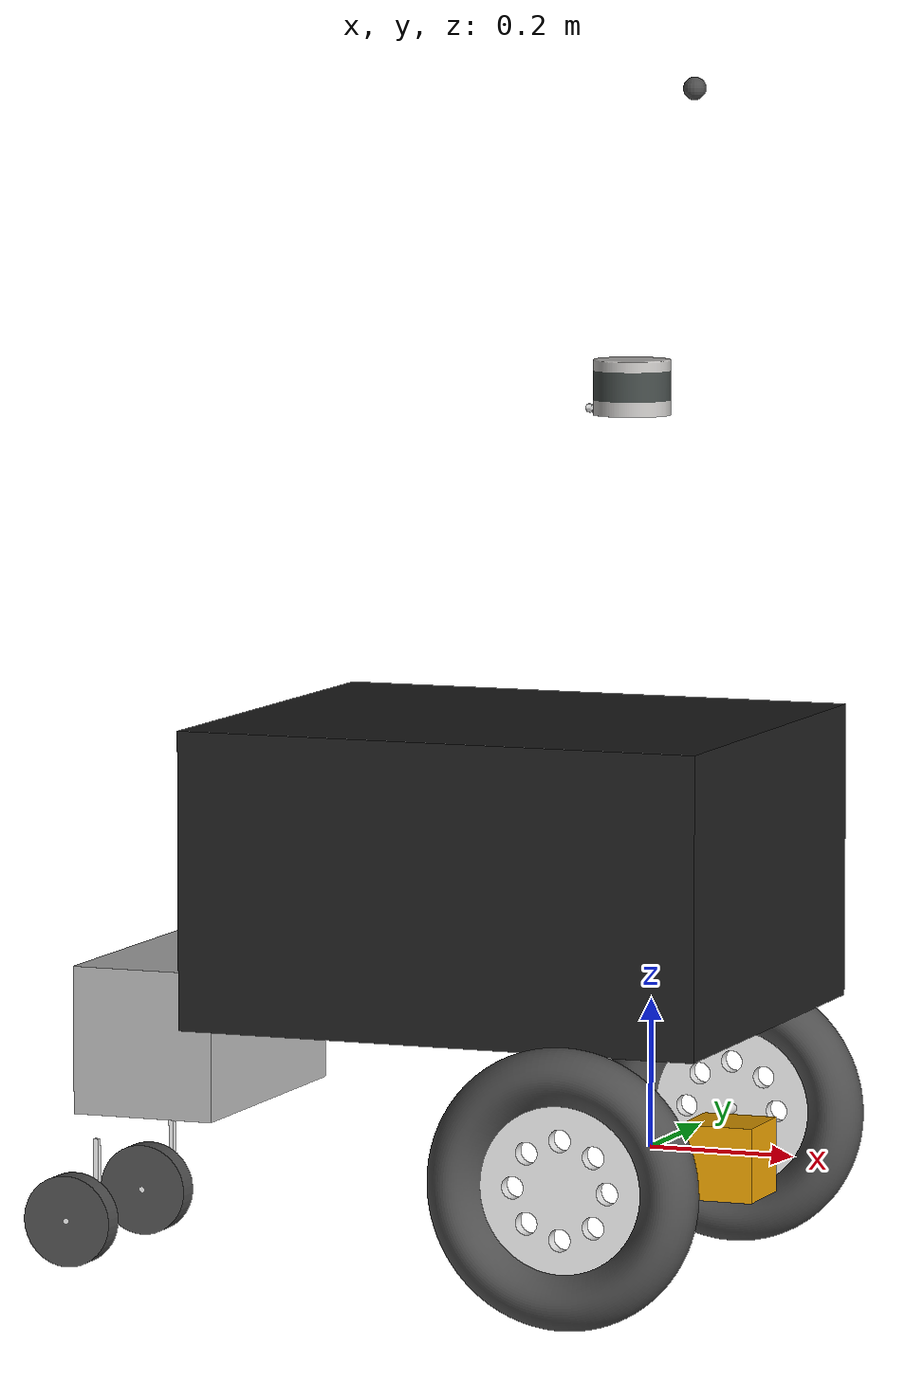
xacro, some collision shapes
<?xml version="1.0"?>
<!-- Revolute-Revolute Manipulator -->
<robot name="igvc_robot" xmlns:xacro="http://www.ros.org/wiki/xacro">
  <!-- Constants for robot dimensions -->
  <xacro:property name="PI" value="3.1415926535897931"/>
  <xacro:macro name="box_inertia" params="m x y z">
    <inertia ixx="${m*(y*y+z*z)/12.0}" ixy = "0.0" ixz = "0.0"
             iyy="${m*(z*z+x*x)/12.0}" iyz = "0.0"
             izz="${m*(x*x+y*y)/12.0}" />
  </xacro:macro>

  <!-- Import gazebo reference -->
  <xacro:include filename="$(find tsukuba2022)/urdf/igvc_robot.gazebo"/>

  <!-- Import 2D LiDAR model -->
  <xacro:include filename="$(find tsukuba2022)/urdf/sensors/hokuyo.urdf.xacro"/>
  <xacro:sensor_hokuyo name="hokuyo" parent="base_link" min_angle="-1.22" max_angle="1.22" samples="720">
    <origin xyz="0.109 0 -0.0075" rpy="0 0 0"/>
  </xacro:sensor_hokuyo>

  <!-- Import 3D LiDAR model -->
  <xacro:include filename="$(find tsukuba2022)/urdf/sensors/velodyne.urdf.xacro"/>
  <xacro:sensor_velodyne name="velodyne" parent="base_link" min_angle="-2.35619" max_angle="2.35619" samples="720">
    <origin xyz="-0.0355 0 1.013" rpy="0 0 0"/>
  </xacro:sensor_velodyne>

  <!-- Import fisheye camera model -->
  <xacro:include filename="$(find tsukuba2022)/urdf/sensors/camera.urdf.xacro"/>
  <xacro:sensor_camera name="camera" parent="base_link">
    <origin xyz="0.0565 0 1.406" rpy="0 0 0"/>
  </xacro:sensor_camera>

  <!-- Import imu model -->
  <xacro:include filename="$(find tsukuba2022)/urdf/sensors/imu.urdf.xacro"/>
  <xacro:sensor_imu name="imu" parent="base_link" size="0.05 0.05 0.05">
    <origin xyz="-0.409 0 0.177" rpy="0 0 0"/>
  </xacro:sensor_imu>

  <!-- Base Link -->
  <link name="base_link">
    <collision>
      <origin xyz="-0.1915 0.0 0.369" rpy="0 0 0"/>
      <geometry>
	     <box size=".719 .610 .398"/>
      </geometry>
    </collision>

    <visual>
      <origin xyz="-0.1915 0.0 0.369" rpy="0 0 0"/>
      <geometry>
	    <mesh filename="package://tsukuba2022/meshes/chassis.dae"/>
      </geometry>
    </visual>

    <inertial>
       <mass value="42.4" />
       <origin xyz="-0.187 0.0 0.13" rpy="0 0 0"/>
       <xacro:box_inertia m="45.7" x="0.824" y="0.556" z="1.00" />

    </inertial>

  </link>

  <!-- Back wheels -->
  <link name="left_caster_link">
  	 <collision>
  	   <origin xyz="-0.788 0.127 -0.13" rpy="0 ${PI/2} ${PI/2}"/>
      <geometry>
        <sphere radius="0.0625"/>
      </geometry>
  	 </collision>
  	 <visual>
  	   <origin xyz="-0.788 0.127 -0.13" rpy="0 0 0"/>
      <geometry>
        <mesh filename="package://tsukuba2022/meshes/left_back_wheel.dae"/>
      </geometry>
  	 </visual>
  </link>

  <joint name="left_caster_joint" type ="fixed">
    <origin xyz="0 0 0" rpy="0 0 0"/>
    <child link="left_caster_link"/>
    <parent link="base_link"/>
  </joint>

  <link name="right_caster_link">
  	 <collision>
  	   <origin xyz="-0.788 -0.127 -0.13" rpy="0 ${PI/2} ${PI/2}"/>
      <geometry>
        <sphere radius="0.0625"/>
      </geometry>
  	 </collision>
  	 <visual>
  	   <origin xyz="-0.788 -0.127 -0.13" rpy="0 0 0"/>
      <geometry>
        <mesh filename="package://tsukuba2022/meshes/left_back_wheel.dae"/>
      </geometry>
  	 </visual>
  </link>

  <joint name="right_caster_joint" type ="fixed">
    <origin xyz="0 0 0" rpy="0 0 0"/>
    <child link="right_caster_link"/>
    <parent link="base_link"/>
  </joint>

  <!-- Payload -->
  <link name="payload_link">
    <collision>
      <origin xyz="0 0 0" rpy="0 0 0"/>
      <geometry>
	     <box size="0.2 0.4 0.2"/>
      </geometry>
    </collision>
    <visual>
      <origin xyz="0 0 0" rpy="0 0 0"/>
      <geometry>
	     <box size="0.2 0.4 0.2"/>
      </geometry>
    </visual>
    <inertial>
       <mass value="9.07" />
       <origin xyz="0 0 0" rpy="0 0 0"/>
       <xacro:box_inertia m="20" x="0.2" y="0.4" z="0.2" />
    </inertial>
  </link>
  <joint name="payload_joint" type="fixed">
    <origin xyz="-0.6500 0.0 0.1300" rpy="0 0 0"/>
    <child link="payload_link"/>
    <parent link="base_link"/>
  </joint>

  <!-- Front wheels -->
  <link name="left_wheel">
    <collision name="collision">
      <origin xyz="0 0.0 0" rpy="0 ${PI/2} ${PI/2}"/>
      <geometry>
         <cylinder  length="0.092" radius="0.192"/>
      </geometry>
    </collision>
    <visual name="visual">
      <origin xyz="0 0.0 0" rpy="0 0 0"/>
      <geometry>
        <mesh filename="package://tsukuba2022/meshes/left_wheel.dae"/>
      </geometry>
    </visual>
    <inertial>
      <mass value="2.9" />
      <origin xyz="0 0.0 0"/>
      <inertia ixx="0.0267706" ixy="0" ixz="0" iyy="0.0496263" iyz="0" izz="0.0267706" />
    </inertial>
  </link>

  <joint type="revolute" name="left_wheel_hinge">
    <origin xyz="0 0.335 0" rpy="0 0 0"/>
    <child link="left_wheel">left_wheel</child>
    <parent link="base_link">base_link</parent>
    <axis xyz="0 1 0"/>
    <limit effort="100" velocity="100.0"  lower="-5000" upper="5000" />
  </joint>

  <link name="right_wheel">
    <collision name="collision">
      <origin xyz="0 0.0 0" rpy="0 ${PI/2} ${PI/2}"/>
      <geometry>
         <cylinder  length="0.092" radius="0.192"/>
      </geometry>
    </collision>
    <visual name="visual">
      <origin xyz="0 0.0 0" rpy="0 0 0"/>
      <geometry>
        <mesh filename="package://tsukuba2022/meshes/right_wheel.dae"/>
      </geometry>
    </visual>
    <inertial>
      <mass value="2.9" />
      <origin xyz="0 0.0 0"/>
      <inertia ixx="0.0267706" ixy="0" ixz="0" iyy="0.0496263" iyz="0" izz="0.0267706" />
    </inertial>
  </link>

  <joint type="revolute" name="right_wheel_hinge">
    <origin xyz="0 -0.335 0" rpy="0 0 0"/>
    <child link="right_wheel">right_wheel</child>
    <parent link="base_link">base_link</parent>
    <axis xyz="0 1 0"/>
    <limit effort="100" velocity="100.0"  lower="-5000" upper="5000" />
  </joint>

  <transmission name="tran1">
    <type>transmission_interface/SimpleTransmission</type>
    <joint name="left_wheel_hinge">
      <hardwareInterface>VelocityJointInterface</hardwareInterface>
    </joint>
    <actuator name="left_motor">
      <hardwareInterface>VelocityJointInterface</hardwareInterface>
      <mechanicalReduction>1</mechanicalReduction>
    </actuator>
  </transmission>

  <transmission name="tran2">
    <type>transmission_interface/SimpleTransmission</type>
    <joint name="right_wheel_hinge">
      <hardwareInterface>VelocityJointInterface</hardwareInterface>
    </joint>
    <actuator name="right_motor">
      <hardwareInterface>VelocityJointInterface</hardwareInterface>
      <mechanicalReduction>1</mechanicalReduction>
    </actuator>
  </transmission>

</robot>

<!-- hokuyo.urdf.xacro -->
<robot name="sensor_hokuyo" xmlns:xacro="http://ros.org/wiki/xacro"
                              xmlns:controller="http://playerstage.sourceforge.net/gazebo/xmlschema/#controller"
                              xmlns:interface="http://playerstage.sourceforge.net/gazebo/xmlschema/#interface">

  <xacro:property name="hokuyo_link" value="0.1" /> <!-- Size of square 'hokuyo' box -->
  <xacro:macro name="sensor_hokuyo" params="name parent *origin min_angle max_angle samples">
    <joint name="${name}_joint" type="fixed">
    	<xacro:insert_block name="origin"/>
      <axis xyz="0 1 0"/>
      <parent link="${parent}"/>
      <child link="${name}_link"/>
    </joint>

    <link name="${name}_link">
      <collision>
        <origin xyz="0 0 0" rpy="0 0 0"/>
        <geometry>
            <box size="${hokuyo_link} ${hokuyo_link} ${hokuyo_link}"/>
        </geometry>
      </collision>

      <visual>
        <origin xyz="0 0 0" rpy="0 0 0"/>
        <geometry>
          <mesh filename="package://igvc2023/meshes/hokuyo.dae"/>
        </geometry>
      </visual>

      <inertial>
        <mass value="0.0001"/>
        <origin xyz="0 0 0" rpy="0 0 0"/>
        <inertia ixx="0.0001" ixy="0" ixz="0" iyy="0.0001" iyz="0" izz="0.0001"/>
      </inertial>
    </link>

    <gazebo reference="hokuyo_link">
    <sensor type="ray" name="head_hokuyo_sensor">
      <pose>0 0 0 0 0 0</pose>
      <visualize>false</visualize>
      <update_rate>40</update_rate>
      <ray>
        <scan>
          <horizontal>
            <resolution>1</resolution>
            <samples>${samples}</samples>
            <min_angle>${min_angle}</min_angle>
            <max_angle>${max_angle}</max_angle>
          </horizontal>
        </scan>
        <range>
          <min>0.10</min>
          <max>30.0</max>
          <resolution>0.01</resolution>
        </range>
        <noise>
          <type>gaussian</type>
          <mean>0.0</mean>
          <stddev>0.01</stddev>
        </noise>
      </ray>
      <plugin name="gazebo_ros_head_hokuyo_controller" filename="libgazebo_ros_laser.so">
        <topicName>/hokuyo_scan</topicName>
        <frameName>hokuyo_link</frameName>
      </plugin>
    </sensor>
  </gazebo>

  </xacro:macro>

</robot>

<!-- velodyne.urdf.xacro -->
<robot name="sensor_velodyne" xmlns:xacro="http://ros.org/wiki/xacro"
                              xmlns:controller="http://playerstage.sourceforge.net/gazebo/xmlschema/#controller"
                              xmlns:interface="http://playerstage.sourceforge.net/gazebo/xmlschema/#interface">

  <xacro:property name="velodyne_link" value="0.1" /> <!-- Size of square 'hokuyo' box -->
  <xacro:macro name="sensor_velodyne" params="name parent *origin min_angle max_angle samples">
    <joint name="${name}_joint" type="fixed">
      <xacro:insert_block name="origin"/>
      <axis xyz="0 1 0"/>
      <parent link="${parent}"/>
      <child link="${name}_link"/>
    </joint>

    <link name="${name}_link">
      <collision>
        <origin xyz="0 0 0" rpy="0 0 0"/>
        <geometry>
            <box size="0.1 0.1 0.1"/>
        </geometry>
      </collision>

      <visual>
        <origin xyz="0 0 0" rpy="0 0 0"/>
        <geometry>
          <mesh filename="package://igvc2023/meshes/velodyne.dae"/>
        </geometry>
      </visual>

      <inertial>
        <mass value="0.0001"/>
        <origin xyz="0 0 0" rpy="0 0 0"/>
        <inertia ixx="0.0001" ixy="0" ixz="0" iyy="0.0001" iyz="0" izz="0.0001"/>
      </inertial>
    </link>

    <gazebo reference="velodyne_link">
      <sensor type="ray" name="head_velodyne_sensor">
        <pose>0 0 0 0 0 0</pose>
        <visualize>false</visualize>
        <update_rate>10</update_rate>
        <ray>
          <scan>
            <horizontal>
              <resolution>1</resolution>
              <samples>1875</samples>
              <min_angle>${-PI}</min_angle>
              <max_angle>${PI}</max_angle>
            </horizontal>
            <vertical>
              <resolution>1</resolution>
              <samples>16</samples>
              <min_angle>${-PI/12}</min_angle>
              <max_angle>${PI/12}</max_angle>
            </vertical>
          </scan>
          <range>
            <min>0.9</min>
            <max>100</max>
            <resolution>0.001</resolution>
          </range>
        </ray>

        <plugin name="gazebo_ros_laser_controller" filename="libgazebo_ros_velodyne_laser.so">
          <topicName>velodyne_points</topicName>
          <frameName>velodyne_link</frameName>
          <min_range>0.9</min_range>
          <max_range>100</max_range>
          <gaussianNoise>0.01</gaussianNoise>
        </plugin>
      </sensor>
    </gazebo>

  </xacro:macro>

</robot>

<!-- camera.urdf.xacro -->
<robot name="sensor_camera" xmlns:xacro="http://ros.org/wiki/xacro"
                            xmlns:controller="http://playerstage.sourceforge.net/gazebo/xmlschema/#controller"
                            xmlns:interface="http://playerstage.sourceforge.net/gazebo/xmlschema/#interface">

  <xacro:property name="camera" value="0.1"/>

  <xacro:macro name="sensor_camera" params="name parent *origin">
    <joint name="${name}_joint" type="fixed">
      <xacro:insert_block name="origin"/>
      <axis xyz="0 1 0"/>
      <parent link="${parent}"/>
      <child link="${name}_link"/>
    </joint>

    <link name="${name}_link">
      <visual>
        <origin xyz="0 0 0" rpy="0 0 0"/>
        <geometry>
            <sphere radius="0.015"/>
        </geometry>
      </visual>

      <collision>
        <origin xyz="0 0 0" rpy="0 0 0"/>
        <geometry>
            <sphere radius="0.015"/>
        </geometry>
      </collision>
    </link>

  <gazebo reference="${name}_link">
    <sensor type="wideanglecamera" name="cv_camera">
      <update_rate>30.0</update_rate>
      <camera>
        <pose>0 0 0 0 ${PI/2} 0</pose>
        <horizontal_fov>3.1415</horizontal_fov>
        <image>
          <format>R8G8B8</format>
          <width>800</width>
          <height>800</height>
        </image>
        <clip>
          <near>0.01</near>
          <far>100</far>
        </clip>
        <lens>
          <type>stereographic</type>
          <scale_to_hfov>1</scale_to_hfov>
          <cutoff_angle>1.5707</cutoff_angle>
          <env_texture_size>512</env_texture_size>
        </lens>
      </camera>

      <plugin name="camera_controller" filename="libgazebo_ros_camera.so">
        <alwaysOn>true</alwaysOn>
        <updateRate>0.0</updateRate>
        <cameraName>cv_camera</cameraName>
        <imageTopicName>image_raw</imageTopicName>
        <cameraInfoTopicName>camera_info</cameraInfoTopicName>
        <frameName>camera_link</frameName>
        <hackBaseline>0.0</hackBaseline>
        <distortionK1>0.0</distortionK1>
        <distortionK2>0.0</distortionK2>
        <distortionK3>0.0</distortionK3>
        <distortionT1>0.0</distortionT1>
        <distortionT2>0.0</distortionT2>
      </plugin>
    </sensor>
    <material>Gazebo/DarkGray</material>
  </gazebo>
  </xacro:macro>

</robot>

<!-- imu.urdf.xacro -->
<robot name="sensor_imu" xmlns:xacro="http://ros.org/wiki/xacro"
                         xmlns:controller="http://playerstage.sourceforge.net/gazebo/xmlschema/#controller"
                         xmlns:interface="http://playerstage.sourceforge.net/gazebo/xmlschema/#interface">

  <xacro:macro name="sensor_imu" params="name parent *origin size">
    <joint name="${name}_joint" type="fixed">
        <xacro:insert_block name="origin"/>
        <axis xyz="1 0 0"/>
        <parent link="${parent}"/>
        <child link="${name}_link"/>
    </joint>

    <link name="${name}_link">
        <inertial>
          <mass value="0.001"/>
          <origin rpy="0 0 0" xyz="0 0 0"/>
          <inertia ixx="0.0001" ixy="0" ixz="0" iyy="0.000001" iyz="0" izz="0.0001"/>
        </inertial>
        <visual>
          <origin rpy="0 0 0" xyz="0 0 0"/>
          <geometry>
            <box size="${size}"/>
          </geometry>
        </visual>
        <collision>
          <origin rpy="0 0 0" xyz="0 0 0"/>
          <geometry>
            <box size="${size}"/>
          </geometry>
        </collision>
    </link>

    <gazebo reference="${name}_link">
      <sensor type="imu" name="imu">
        <always_on>true</always_on>
        <topic>imu</topic>
        <plugin name="imu_plugin" filename="libgazebo_ros_imu_sensor.so">
          <bodyName>${name}_link</bodyName> <!-- bodyName always set base_link by URDF parser -->
          <frameName>${name}_link</frameName>
          <topicName>imu</topicName>
          <updateRateHZ>100.0</updateRateHZ>
          <gaussianNoise>0.001</gaussianNoise>
          <xyzOffset>0 0 0</xyzOffset>
          <rpyOffset>0 0 0</rpyOffset>
        </plugin>
      </sensor>
      <material>Gazebo/White</material>
    </gazebo>
  </xacro:macro>

</robot>
